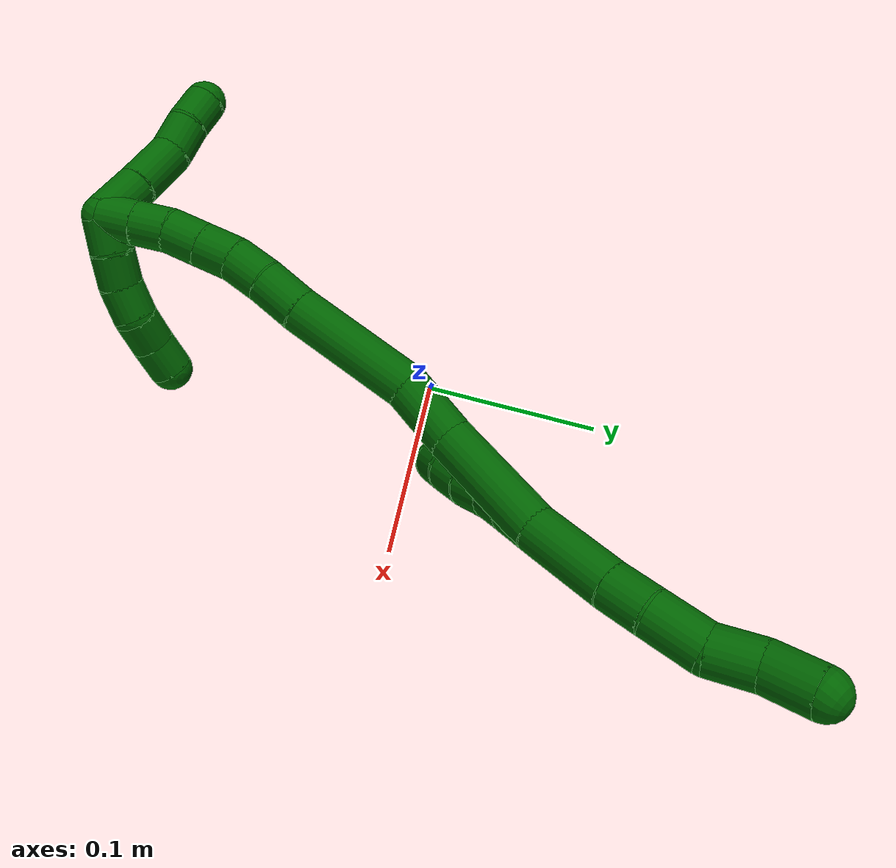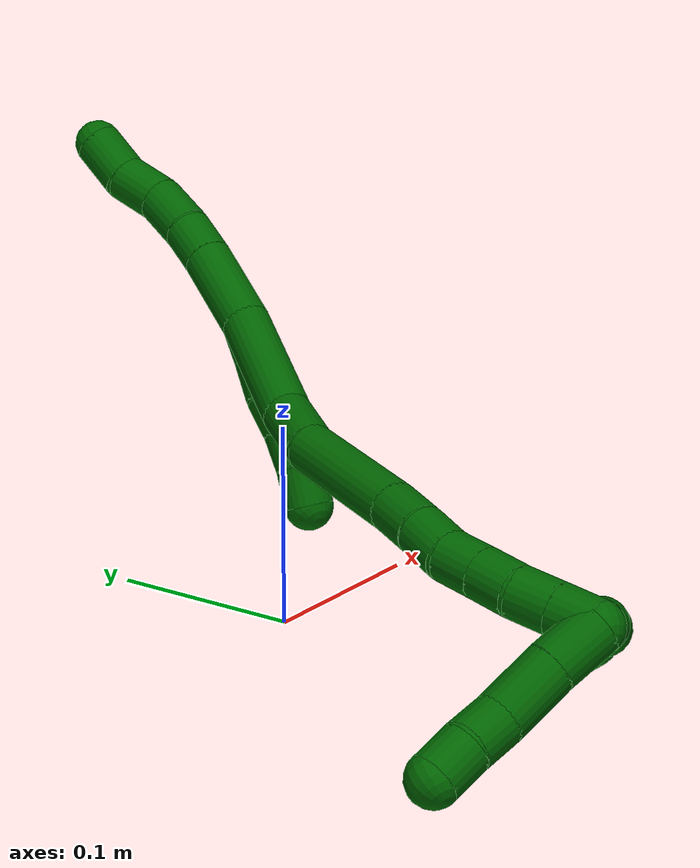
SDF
<sdf version="1.7">
 <world name="default">
  <model name="6">
   <static>0</static>
   <link name="6">
    <collision name="collision-cylinder-e_1_2_8">
     <pose>0.000823 -0.000546 0.023514 0.023215 0.034963 0.000406</pose>
     <geometry><cylinder><radius>0.0125</radius><length>0.047069</length></cylinder></geometry>
     <surface>
      <friction><ode><mu>1.16</mu><mu2>1.16</mu2><slip1>0</slip1><slip2>0</slip2></ode></friction>
      <contact><ode><kp>1e+06</kp><kd>1</kd><max_vel>0</max_vel><min_depth>0.001</min_depth></ode></contact>
     </surface>
    </collision>
    <visual name="visual-cylinder-e_1_2_8">
     <pose>0.000823 -0.000546 0.023514 0.023215 0.034963 0.000406</pose>
     <geometry><cylinder><radius>0.0125</radius><length>0.047069</length></cylinder></geometry>
     <material><ambient>0 0.392157 0.003922 1</ambient></material>
    </visual>
    <collision name="collision-cylinder-e_2_8_9">
     <pose>0.001874 -0.002045 0.058246 0.084715 0.020349 0.000862</pose>
     <geometry><cylinder><radius>0.0125</radius><length>0.022523</length></cylinder></geometry>
     <surface>
      <friction><ode><mu>1.16</mu><mu2>1.16</mu2><slip1>0</slip1><slip2>0</slip2></ode></friction>
      <contact><ode><kp>1e+06</kp><kd>1</kd><max_vel>0</max_vel><min_depth>0.001</min_depth></ode></contact>
     </surface>
    </collision>
    <visual name="visual-cylinder-e_2_8_9">
     <pose>0.001874 -0.002045 0.058246 0.084715 0.020349 0.000862</pose>
     <geometry><cylinder><radius>0.0125</radius><length>0.022523</length></cylinder></geometry>
     <material><ambient>0 0.392157 0.003922 1</ambient></material>
    </visual>
    <collision name="collision-cylinder-e_3_9_10">
     <pose>0.000348 -0.004339 0.083641 0.094351 -0.122694 -0.0058</pose>
     <geometry><cylinder><radius>0.0125</radius><length>0.028694</length></cylinder></geometry>
     <surface>
      <friction><ode><mu>1.16</mu><mu2>1.16</mu2><slip1>0</slip1><slip2>0</slip2></ode></friction>
      <contact><ode><kp>1e+06</kp><kd>1</kd><max_vel>0</max_vel><min_depth>0.001</min_depth></ode></contact>
     </surface>
    </collision>
    <visual name="visual-cylinder-e_3_9_10">
     <pose>0.000348 -0.004339 0.083641 0.094351 -0.122694 -0.0058</pose>
     <geometry><cylinder><radius>0.0125</radius><length>0.028694</length></cylinder></geometry>
     <material><ambient>0 0.392157 0.003922 1</ambient></material>
    </visual>
    <collision name="collision-cylinder-e_4_10_11">
     <pose>-0.002955 -0.010673 0.109292 0.410396 -0.122999 -0.02563</pose>
     <geometry><cylinder><radius>0.0125</radius><length>0.025218</length></cylinder></geometry>
     <surface>
      <friction><ode><mu>1.16</mu><mu2>1.16</mu2><slip1>0</slip1><slip2>0</slip2></ode></friction>
      <contact><ode><kp>1e+06</kp><kd>1</kd><max_vel>0</max_vel><min_depth>0.001</min_depth></ode></contact>
     </surface>
    </collision>
    <visual name="visual-cylinder-e_4_10_11">
     <pose>-0.002955 -0.010673 0.109292 0.410396 -0.122999 -0.02563</pose>
     <geometry><cylinder><radius>0.0125</radius><length>0.025218</length></cylinder></geometry>
     <material><ambient>0 0.392157 0.003922 1</ambient></material>
    </visual>
    <collision name="collision-cylinder-e_5_11_6">
     <pose>-0.00306 -0.01868 0.133586 0.230973 0.10911 0.01267</pose>
     <geometry><cylinder><radius>0.0125</radius><length>0.026496</length></cylinder></geometry>
     <surface>
      <friction><ode><mu>1.16</mu><mu2>1.16</mu2><slip1>0</slip1><slip2>0</slip2></ode></friction>
      <contact><ode><kp>1e+06</kp><kd>1</kd><max_vel>0</max_vel><min_depth>0.001</min_depth></ode></contact>
     </surface>
    </collision>
    <visual name="visual-cylinder-e_5_11_6">
     <pose>-0.00306 -0.01868 0.133586 0.230973 0.10911 0.01267</pose>
     <geometry><cylinder><radius>0.0125</radius><length>0.026496</length></cylinder></geometry>
     <material><ambient>0 0.392157 0.003922 1</ambient></material>
    </visual>
    <collision name="collision-cylinder-e_1_2_12">
     <pose>-0.003485 0.00017 -0.009372 -3.12346 -0.355974 3.0409</pose>
     <geometry><cylinder><radius>0.0125</radius><length>0.02</length></cylinder></geometry>
     <surface>
      <friction><ode><mu>1.16</mu><mu2>1.16</mu2><slip1>0</slip1><slip2>0</slip2></ode></friction>
      <contact><ode><kp>1e+06</kp><kd>1</kd><max_vel>0</max_vel><min_depth>0.001</min_depth></ode></contact>
     </surface>
    </collision>
    <visual name="visual-cylinder-e_1_2_12">
     <pose>-0.003485 0.00017 -0.009372 -3.12346 -0.355974 3.0409</pose>
     <geometry><cylinder><radius>0.0125</radius><length>0.02</length></cylinder></geometry>
     <material><ambient>0 0.392157 0.003922 1</ambient></material>
    </visual>
    <collision name="collision-cylinder-e_2_12_13">
     <pose>-0.011507 0.000669 -0.027648 -3.1046 -0.470946 2.98768</pose>
     <geometry><cylinder><radius>0.0125</radius><length>0.02</length></cylinder></geometry>
     <surface>
      <friction><ode><mu>1.16</mu><mu2>1.16</mu2><slip1>0</slip1><slip2>0</slip2></ode></friction>
      <contact><ode><kp>1e+06</kp><kd>1</kd><max_vel>0</max_vel><min_depth>0.001</min_depth></ode></contact>
     </surface>
    </collision>
    <visual name="visual-cylinder-e_2_12_13">
     <pose>-0.011507 0.000669 -0.027648 -3.1046 -0.470946 2.98768</pose>
     <geometry><cylinder><radius>0.0125</radius><length>0.02</length></cylinder></geometry>
     <material><ambient>0 0.392157 0.003922 1</ambient></material>
    </visual>
    <collision name="collision-cylinder-e_3_13_14">
     <pose>-0.019356 0.002539 -0.045863 -2.97761 -0.337499 2.24274</pose>
     <geometry><cylinder><radius>0.0125</radius><length>0.02</length></cylinder></geometry>
     <surface>
      <friction><ode><mu>1.16</mu><mu2>1.16</mu2><slip1>0</slip1><slip2>0</slip2></ode></friction>
      <contact><ode><kp>1e+06</kp><kd>1</kd><max_vel>0</max_vel><min_depth>0.001</min_depth></ode></contact>
     </surface>
    </collision>
    <visual name="visual-cylinder-e_3_13_14">
     <pose>-0.019356 0.002539 -0.045863 -2.97761 -0.337499 2.24274</pose>
     <geometry><cylinder><radius>0.0125</radius><length>0.02</length></cylinder></geometry>
     <material><ambient>0 0.392157 0.003922 1</ambient></material>
    </visual>
    <collision name="collision-cylinder-e_4_14_15">
     <pose>-0.026603 0.004522 -0.064355 -3.09351 -0.404494 2.90811</pose>
     <geometry><cylinder><radius>0.0125</radius><length>0.02</length></cylinder></geometry>
     <surface>
      <friction><ode><mu>1.16</mu><mu2>1.16</mu2><slip1>0</slip1><slip2>0</slip2></ode></friction>
      <contact><ode><kp>1e+06</kp><kd>1</kd><max_vel>0</max_vel><min_depth>0.001</min_depth></ode></contact>
     </surface>
    </collision>
    <visual name="visual-cylinder-e_4_14_15">
     <pose>-0.026603 0.004522 -0.064355 -3.09351 -0.404494 2.90811</pose>
     <geometry><cylinder><radius>0.0125</radius><length>0.02</length></cylinder></geometry>
     <material><ambient>0 0.392157 0.003922 1</ambient></material>
    </visual>
    <collision name="collision-cylinder-e_5_15_5">
     <pose>-0.036489 0.005182 -0.081571 -3.11445 -0.637362 3.05938</pose>
     <geometry><cylinder><radius>0.0125</radius><length>0.02</length></cylinder></geometry>
     <surface>
      <friction><ode><mu>1.16</mu><mu2>1.16</mu2><slip1>0</slip1><slip2>0</slip2></ode></friction>
      <contact><ode><kp>1e+06</kp><kd>1</kd><max_vel>0</max_vel><min_depth>0.001</min_depth></ode></contact>
     </surface>
    </collision>
    <visual name="visual-cylinder-e_5_15_5">
     <pose>-0.036489 0.005182 -0.081571 -3.11445 -0.637362 3.05938</pose>
     <geometry><cylinder><radius>0.0125</radius><length>0.02</length></cylinder></geometry>
     <material><ambient>0 0.392157 0.003922 1</ambient></material>
    </visual>
    <collision name="collision-cylinder-e_1_2_16">
     <pose>0.001431 -0.004294 -0.032988 3.01216 0.043 0.64075</pose>
     <geometry><cylinder><radius>0.0125</radius><length>0.066594</length></cylinder></geometry>
     <surface>
      <friction><ode><mu>1.16</mu><mu2>1.16</mu2><slip1>0</slip1><slip2>0</slip2></ode></friction>
      <contact><ode><kp>1e+06</kp><kd>1</kd><max_vel>0</max_vel><min_depth>0.001</min_depth></ode></contact>
     </surface>
    </collision>
    <visual name="visual-cylinder-e_1_2_16">
     <pose>0.001431 -0.004294 -0.032988 3.01216 0.043 0.64075</pose>
     <geometry><cylinder><radius>0.0125</radius><length>0.066594</length></cylinder></geometry>
     <material><ambient>0 0.392157 0.003922 1</ambient></material>
    </visual>
    <collision name="collision-cylinder-e_2_16_17">
     <pose>0.008957 -0.012033 -0.082499 2.93604 0.346502 2.0765</pose>
     <geometry><cylinder><radius>0.0125</radius><length>0.03589</length></cylinder></geometry>
     <surface>
      <friction><ode><mu>1.16</mu><mu2>1.16</mu2><slip1>0</slip1><slip2>0</slip2></ode></friction>
      <contact><ode><kp>1e+06</kp><kd>1</kd><max_vel>0</max_vel><min_depth>0.001</min_depth></ode></contact>
     </surface>
    </collision>
    <visual name="visual-cylinder-e_2_16_17">
     <pose>0.008957 -0.012033 -0.082499 2.93604 0.346502 2.0765</pose>
     <geometry><cylinder><radius>0.0125</radius><length>0.03589</length></cylinder></geometry>
     <material><ambient>0 0.392157 0.003922 1</ambient></material>
    </visual>
    <collision name="collision-cylinder-e_3_17_18">
     <pose>0.029351 -0.013788 -0.131407 -3.08948 0.415324 -2.89543</pose>
     <geometry><cylinder><radius>0.0125</radius><length>0.070882</length></cylinder></geometry>
     <surface>
      <friction><ode><mu>1.16</mu><mu2>1.16</mu2><slip1>0</slip1><slip2>0</slip2></ode></friction>
      <contact><ode><kp>1e+06</kp><kd>1</kd><max_vel>0</max_vel><min_depth>0.001</min_depth></ode></contact>
     </surface>
    </collision>
    <visual name="visual-cylinder-e_3_17_18">
     <pose>0.029351 -0.013788 -0.131407 -3.08948 0.415324 -2.89543</pose>
     <geometry><cylinder><radius>0.0125</radius><length>0.070882</length></cylinder></geometry>
     <material><ambient>0 0.392157 0.003922 1</ambient></material>
    </visual>
    <collision name="collision-cylinder-e_4_18_19">
     <pose>0.048427 -0.012419 -0.175139 3.11339 0.398192 3.00201</pose>
     <geometry><cylinder><radius>0.0125</radius><length>0.024633</length></cylinder></geometry>
     <surface>
      <friction><ode><mu>1.16</mu><mu2>1.16</mu2><slip1>0</slip1><slip2>0</slip2></ode></friction>
      <contact><ode><kp>1e+06</kp><kd>1</kd><max_vel>0</max_vel><min_depth>0.001</min_depth></ode></contact>
     </surface>
    </collision>
    <visual name="visual-cylinder-e_4_18_19">
     <pose>0.048427 -0.012419 -0.175139 3.11339 0.398192 3.00201</pose>
     <geometry><cylinder><radius>0.0125</radius><length>0.024633</length></cylinder></geometry>
     <material><ambient>0 0.392157 0.003922 1</ambient></material>
    </visual>
    <collision name="collision-cylinder-e_5_19_20">
     <pose>0.056422 -0.01232 -0.196843 -3.10116 0.301178 -2.87667</pose>
     <geometry><cylinder><radius>0.0125</radius><length>0.021705</length></cylinder></geometry>
     <surface>
      <friction><ode><mu>1.16</mu><mu2>1.16</mu2><slip1>0</slip1><slip2>0</slip2></ode></friction>
      <contact><ode><kp>1e+06</kp><kd>1</kd><max_vel>0</max_vel><min_depth>0.001</min_depth></ode></contact>
     </surface>
    </collision>
    <visual name="visual-cylinder-e_5_19_20">
     <pose>0.056422 -0.01232 -0.196843 -3.10116 0.301178 -2.87667</pose>
     <geometry><cylinder><radius>0.0125</radius><length>0.021705</length></cylinder></geometry>
     <material><ambient>0 0.392157 0.003922 1</ambient></material>
    </visual>
    <collision name="collision-cylinder-e_6_20_21">
     <pose>0.063495 -0.00945 -0.216199 -2.87563 0.391782 -1.9553</pose>
     <geometry><cylinder><radius>0.0125</radius><length>0.020185</length></cylinder></geometry>
     <surface>
      <friction><ode><mu>1.16</mu><mu2>1.16</mu2><slip1>0</slip1><slip2>0</slip2></ode></friction>
      <contact><ode><kp>1e+06</kp><kd>1</kd><max_vel>0</max_vel><min_depth>0.001</min_depth></ode></contact>
     </surface>
    </collision>
    <visual name="visual-cylinder-e_6_20_21">
     <pose>0.063495 -0.00945 -0.216199 -2.87563 0.391782 -1.9553</pose>
     <geometry><cylinder><radius>0.0125</radius><length>0.020185</length></cylinder></geometry>
     <material><ambient>0 0.392157 0.003922 1</ambient></material>
    </visual>
    <collision name="collision-cylinder-e_7_21_22">
     <pose>0.071075 -0.004606 -0.234215 -2.8823 0.379999 -1.95007</pose>
     <geometry><cylinder><radius>0.0125</radius><length>0.020088</length></cylinder></geometry>
     <surface>
      <friction><ode><mu>1.16</mu><mu2>1.16</mu2><slip1>0</slip1><slip2>0</slip2></ode></friction>
      <contact><ode><kp>1e+06</kp><kd>1</kd><max_vel>0</max_vel><min_depth>0.001</min_depth></ode></contact>
     </surface>
    </collision>
    <visual name="visual-cylinder-e_7_21_22">
     <pose>0.071075 -0.004606 -0.234215 -2.8823 0.379999 -1.95007</pose>
     <geometry><cylinder><radius>0.0125</radius><length>0.020088</length></cylinder></geometry>
     <material><ambient>0 0.392157 0.003922 1</ambient></material>
    </visual>
    <collision name="collision-cylinder-e_8_22_23">
     <pose>0.077998 0.001885 -0.25178 -2.69443 0.325316 -1.25032</pose>
     <geometry><cylinder><radius>0.0125</radius><length>0.020012</length></cylinder></geometry>
     <surface>
      <friction><ode><mu>1.16</mu><mu2>1.16</mu2><slip1>0</slip1><slip2>0</slip2></ode></friction>
      <contact><ode><kp>1e+06</kp><kd>1</kd><max_vel>0</max_vel><min_depth>0.001</min_depth></ode></contact>
     </surface>
    </collision>
    <visual name="visual-cylinder-e_8_22_23">
     <pose>0.077998 0.001885 -0.25178 -2.69443 0.325316 -1.25032</pose>
     <geometry><cylinder><radius>0.0125</radius><length>0.020012</length></cylinder></geometry>
     <material><ambient>0 0.392157 0.003922 1</ambient></material>
    </visual>
    <collision name="collision-cylinder-e_9_23_1">
     <pose>0.084322 0.010047 -0.26892 -2.69987 0.317801 -1.23977</pose>
     <geometry><cylinder><radius>0.0125</radius><length>0.02001</length></cylinder></geometry>
     <surface>
      <friction><ode><mu>1.16</mu><mu2>1.16</mu2><slip1>0</slip1><slip2>0</slip2></ode></friction>
      <contact><ode><kp>1e+06</kp><kd>1</kd><max_vel>0</max_vel><min_depth>0.001</min_depth></ode></contact>
     </surface>
    </collision>
    <visual name="visual-cylinder-e_9_23_1">
     <pose>0.084322 0.010047 -0.26892 -2.69987 0.317801 -1.23977</pose>
     <geometry><cylinder><radius>0.0125</radius><length>0.02001</length></cylinder></geometry>
     <material><ambient>0 0.392157 0.003922 1</ambient></material>
    </visual>
    <collision name="collision-cylinder-e_1_1_24">
     <pose>0.081043 0.02048 -0.273222 -0.978062 -0.695195 0.380927</pose>
     <geometry><cylinder><radius>0.0125</radius><length>0.02</length></cylinder></geometry>
     <surface>
      <friction><ode><mu>1.16</mu><mu2>1.16</mu2><slip1>0</slip1><slip2>0</slip2></ode></friction>
      <contact><ode><kp>1e+06</kp><kd>1</kd><max_vel>0</max_vel><min_depth>0.001</min_depth></ode></contact>
     </surface>
    </collision>
    <visual name="visual-cylinder-e_1_1_24">
     <pose>0.081043 0.02048 -0.273222 -0.978062 -0.695195 0.380927</pose>
     <geometry><cylinder><radius>0.0125</radius><length>0.02</length></cylinder></geometry>
     <material><ambient>0 0.392157 0.003922 1</ambient></material>
    </visual>
    <collision name="collision-cylinder-e_2_24_25">
     <pose>0.067393 0.032885 -0.265603 -1.06687 -0.810305 0.49611</pose>
     <geometry><cylinder><radius>0.0125</radius><length>0.02</length></cylinder></geometry>
     <surface>
      <friction><ode><mu>1.16</mu><mu2>1.16</mu2><slip1>0</slip1><slip2>0</slip2></ode></friction>
      <contact><ode><kp>1e+06</kp><kd>1</kd><max_vel>0</max_vel><min_depth>0.001</min_depth></ode></contact>
     </surface>
    </collision>
    <visual name="visual-cylinder-e_2_24_25">
     <pose>0.067393 0.032885 -0.265603 -1.06687 -0.810305 0.49611</pose>
     <geometry><cylinder><radius>0.0125</radius><length>0.02</length></cylinder></geometry>
     <material><ambient>0 0.392157 0.003922 1</ambient></material>
    </visual>
    <collision name="collision-cylinder-e_3_25_26">
     <pose>0.052868 0.043618 -0.257281 -0.754725 -0.81541 0.339091</pose>
     <geometry><cylinder><radius>0.0125</radius><length>0.02</length></cylinder></geometry>
     <surface>
      <friction><ode><mu>1.16</mu><mu2>1.16</mu2><slip1>0</slip1><slip2>0</slip2></ode></friction>
      <contact><ode><kp>1e+06</kp><kd>1</kd><max_vel>0</max_vel><min_depth>0.001</min_depth></ode></contact>
     </surface>
    </collision>
    <visual name="visual-cylinder-e_3_25_26">
     <pose>0.052868 0.043618 -0.257281 -0.754725 -0.81541 0.339091</pose>
     <geometry><cylinder><radius>0.0125</radius><length>0.02</length></cylinder></geometry>
     <material><ambient>0 0.392157 0.003922 1</ambient></material>
    </visual>
    <collision name="collision-cylinder-e_4_26_27">
     <pose>0.036546 0.051565 -0.249516 -0.864793 -1.12946 0.568943</pose>
     <geometry><cylinder><radius>0.0125</radius><length>0.02</length></cylinder></geometry>
     <surface>
      <friction><ode><mu>1.16</mu><mu2>1.16</mu2><slip1>0</slip1><slip2>0</slip2></ode></friction>
      <contact><ode><kp>1e+06</kp><kd>1</kd><max_vel>0</max_vel><min_depth>0.001</min_depth></ode></contact>
     </surface>
    </collision>
    <visual name="visual-cylinder-e_4_26_27">
     <pose>0.036546 0.051565 -0.249516 -0.864793 -1.12946 0.568943</pose>
     <geometry><cylinder><radius>0.0125</radius><length>0.02</length></cylinder></geometry>
     <material><ambient>0 0.392157 0.003922 1</ambient></material>
    </visual>
    <collision name="collision-cylinder-e_5_27_4">
     <pose>0.018883 0.057758 -0.24262 -0.61967 -1.03948 0.362367</pose>
     <geometry><cylinder><radius>0.0125</radius><length>0.02</length></cylinder></geometry>
     <surface>
      <friction><ode><mu>1.16</mu><mu2>1.16</mu2><slip1>0</slip1><slip2>0</slip2></ode></friction>
      <contact><ode><kp>1e+06</kp><kd>1</kd><max_vel>0</max_vel><min_depth>0.001</min_depth></ode></contact>
     </surface>
    </collision>
    <visual name="visual-cylinder-e_5_27_4">
     <pose>0.018883 0.057758 -0.24262 -0.61967 -1.03948 0.362367</pose>
     <geometry><cylinder><radius>0.0125</radius><length>0.02</length></cylinder></geometry>
     <material><ambient>0 0.392157 0.003922 1</ambient></material>
    </visual>
    <collision name="collision-cylinder-e_1_1_28">
     <pose>0.081994 0.002122 -0.281089 1.86083 -0.411169 -0.545749</pose>
     <geometry><cylinder><radius>0.0125</radius><length>0.027295</length></cylinder></geometry>
     <surface>
      <friction><ode><mu>1.16</mu><mu2>1.16</mu2><slip1>0</slip1><slip2>0</slip2></ode></friction>
      <contact><ode><kp>1e+06</kp><kd>1</kd><max_vel>0</max_vel><min_depth>0.001</min_depth></ode></contact>
     </surface>
    </collision>
    <visual name="visual-cylinder-e_1_1_28">
     <pose>0.081994 0.002122 -0.281089 1.86083 -0.411169 -0.545749</pose>
     <geometry><cylinder><radius>0.0125</radius><length>0.027295</length></cylinder></geometry>
     <material><ambient>0 0.392157 0.003922 1</ambient></material>
    </visual>
    <collision name="collision-cylinder-e_2_28_29">
     <pose>0.070036 -0.023429 -0.289859 1.9364 -0.420996 -0.602262</pose>
     <geometry><cylinder><radius>0.0125</radius><length>0.031826</length></cylinder></geometry>
     <surface>
      <friction><ode><mu>1.16</mu><mu2>1.16</mu2><slip1>0</slip1><slip2>0</slip2></ode></friction>
      <contact><ode><kp>1e+06</kp><kd>1</kd><max_vel>0</max_vel><min_depth>0.001</min_depth></ode></contact>
     </surface>
    </collision>
    <visual name="visual-cylinder-e_2_28_29">
     <pose>0.070036 -0.023429 -0.289859 1.9364 -0.420996 -0.602262</pose>
     <geometry><cylinder><radius>0.0125</radius><length>0.031826</length></cylinder></geometry>
     <material><ambient>0 0.392157 0.003922 1</ambient></material>
    </visual>
    <collision name="collision-cylinder-e_3_29_30">
     <pose>0.062184 -0.046653 -0.29869 1.93103 -0.129877 -0.187419</pose>
     <geometry><cylinder><radius>0.0125</radius><length>0.020822</length></cylinder></geometry>
     <surface>
      <friction><ode><mu>1.16</mu><mu2>1.16</mu2><slip1>0</slip1><slip2>0</slip2></ode></friction>
      <contact><ode><kp>1e+06</kp><kd>1</kd><max_vel>0</max_vel><min_depth>0.001</min_depth></ode></contact>
     </surface>
    </collision>
    <visual name="visual-cylinder-e_3_29_30">
     <pose>0.062184 -0.046653 -0.29869 1.93103 -0.129877 -0.187419</pose>
     <geometry><cylinder><radius>0.0125</radius><length>0.020822</length></cylinder></geometry>
     <material><ambient>0 0.392157 0.003922 1</ambient></material>
    </visual>
    <collision name="collision-cylinder-e_4_30_3">
     <pose>0.057953 -0.065188 -0.306004 1.96343 -0.291654 -0.432698</pose>
     <geometry><cylinder><radius>0.0125</radius><length>0.020057</length></cylinder></geometry>
     <surface>
      <friction><ode><mu>1.16</mu><mu2>1.16</mu2><slip1>0</slip1><slip2>0</slip2></ode></friction>
      <contact><ode><kp>1e+06</kp><kd>1</kd><max_vel>0</max_vel><min_depth>0.001</min_depth></ode></contact>
     </surface>
    </collision>
    <visual name="visual-cylinder-e_4_30_3">
     <pose>0.057953 -0.065188 -0.306004 1.96343 -0.291654 -0.432698</pose>
     <geometry><cylinder><radius>0.0125</radius><length>0.020057</length></cylinder></geometry>
     <material><ambient>0 0.392157 0.003922 1</ambient></material>
    </visual>
    <collision name="collision-sphere-3">
     <pose>0.055069 -0.074062 -0.309679 0 -0 0</pose>
     <geometry><sphere><radius>0.0125</radius></sphere></geometry>
     <surface>
      <friction><ode><mu>1.16</mu><mu2>1.16</mu2><slip1>0</slip1><slip2>0</slip2></ode></friction>
      <contact><ode><kp>1e+06</kp><kd>1</kd><max_vel>0</max_vel><min_depth>0.001</min_depth></ode></contact>
     </surface>
    </collision>
    <visual name="visual-sphere-3">
     <pose>0.055069 -0.074062 -0.309679 0 -0 0</pose>
     <geometry><sphere><radius>0.0125</radius></sphere></geometry>
     <material><ambient>0 0.392157 0.003922 1</ambient></material>
    </visual>
    <collision name="collision-sphere-30">
     <pose>0.060836 -0.056314 -0.302329 0 -0 0</pose>
     <geometry><sphere><radius>0.0125</radius></sphere></geometry>
     <surface>
      <friction><ode><mu>1.16</mu><mu2>1.16</mu2><slip1>0</slip1><slip2>0</slip2></ode></friction>
      <contact><ode><kp>1e+06</kp><kd>1</kd><max_vel>0</max_vel><min_depth>0.001</min_depth></ode></contact>
     </surface>
    </collision>
    <visual name="visual-sphere-30">
     <pose>0.060836 -0.056314 -0.302329 0 -0 0</pose>
     <geometry><sphere><radius>0.0125</radius></sphere></geometry>
     <material><ambient>0 0.392157 0.003922 1</ambient></material>
    </visual>
    <collision name="collision-sphere-29">
     <pose>0.063533 -0.036993 -0.295052 0 -0 0</pose>
     <geometry><sphere><radius>0.0125</radius></sphere></geometry>
     <surface>
      <friction><ode><mu>1.16</mu><mu2>1.16</mu2><slip1>0</slip1><slip2>0</slip2></ode></friction>
      <contact><ode><kp>1e+06</kp><kd>1</kd><max_vel>0</max_vel><min_depth>0.001</min_depth></ode></contact>
     </surface>
    </collision>
    <visual name="visual-sphere-29">
     <pose>0.063533 -0.036993 -0.295052 0 -0 0</pose>
     <geometry><sphere><radius>0.0125</radius></sphere></geometry>
     <material><ambient>0 0.392157 0.003922 1</ambient></material>
    </visual>
    <collision name="collision-sphere-28">
     <pose>0.076539 -0.009865 -0.284667 0 -0 0</pose>
     <geometry><sphere><radius>0.0125</radius></sphere></geometry>
     <surface>
      <friction><ode><mu>1.16</mu><mu2>1.16</mu2><slip1>0</slip1><slip2>0</slip2></ode></friction>
      <contact><ode><kp>1e+06</kp><kd>1</kd><max_vel>0</max_vel><min_depth>0.001</min_depth></ode></contact>
     </surface>
    </collision>
    <visual name="visual-sphere-28">
     <pose>0.076539 -0.009865 -0.284667 0 -0 0</pose>
     <geometry><sphere><radius>0.0125</radius></sphere></geometry>
     <material><ambient>0 0.392157 0.003922 1</ambient></material>
    </visual>
    <collision name="collision-sphere-4">
     <pose>0.010262 0.0607 -0.238495 0 -0 0</pose>
     <geometry><sphere><radius>0.0125</radius></sphere></geometry>
     <surface>
      <friction><ode><mu>1.16</mu><mu2>1.16</mu2><slip1>0</slip1><slip2>0</slip2></ode></friction>
      <contact><ode><kp>1e+06</kp><kd>1</kd><max_vel>0</max_vel><min_depth>0.001</min_depth></ode></contact>
     </surface>
    </collision>
    <visual name="visual-sphere-4">
     <pose>0.010262 0.0607 -0.238495 0 -0 0</pose>
     <geometry><sphere><radius>0.0125</radius></sphere></geometry>
     <material><ambient>0 0.392157 0.003922 1</ambient></material>
    </visual>
    <collision name="collision-sphere-27">
     <pose>0.027504 0.054815 -0.246744 0 -0 0</pose>
     <geometry><sphere><radius>0.0125</radius></sphere></geometry>
     <surface>
      <friction><ode><mu>1.16</mu><mu2>1.16</mu2><slip1>0</slip1><slip2>0</slip2></ode></friction>
      <contact><ode><kp>1e+06</kp><kd>1</kd><max_vel>0</max_vel><min_depth>0.001</min_depth></ode></contact>
     </surface>
    </collision>
    <visual name="visual-sphere-27">
     <pose>0.027504 0.054815 -0.246744 0 -0 0</pose>
     <geometry><sphere><radius>0.0125</radius></sphere></geometry>
     <material><ambient>0 0.392157 0.003922 1</ambient></material>
    </visual>
    <collision name="collision-sphere-26">
     <pose>0.045588 0.048314 -0.252287 0 -0 0</pose>
     <geometry><sphere><radius>0.0125</radius></sphere></geometry>
     <surface>
      <friction><ode><mu>1.16</mu><mu2>1.16</mu2><slip1>0</slip1><slip2>0</slip2></ode></friction>
      <contact><ode><kp>1e+06</kp><kd>1</kd><max_vel>0</max_vel><min_depth>0.001</min_depth></ode></contact>
     </surface>
    </collision>
    <visual name="visual-sphere-26">
     <pose>0.045588 0.048314 -0.252287 0 -0 0</pose>
     <geometry><sphere><radius>0.0125</radius></sphere></geometry>
     <material><ambient>0 0.392157 0.003922 1</ambient></material>
    </visual>
    <collision name="collision-sphere-25">
     <pose>0.060148 0.038921 -0.262275 0 -0 0</pose>
     <geometry><sphere><radius>0.0125</radius></sphere></geometry>
     <surface>
      <friction><ode><mu>1.16</mu><mu2>1.16</mu2><slip1>0</slip1><slip2>0</slip2></ode></friction>
      <contact><ode><kp>1e+06</kp><kd>1</kd><max_vel>0</max_vel><min_depth>0.001</min_depth></ode></contact>
     </surface>
    </collision>
    <visual name="visual-sphere-25">
     <pose>0.060148 0.038921 -0.262275 0 -0 0</pose>
     <geometry><sphere><radius>0.0125</radius></sphere></geometry>
     <material><ambient>0 0.392157 0.003922 1</ambient></material>
    </visual>
    <collision name="collision-sphere-24">
     <pose>0.074638 0.026849 -0.268932 0 -0 0</pose>
     <geometry><sphere><radius>0.0125</radius></sphere></geometry>
     <surface>
      <friction><ode><mu>1.16</mu><mu2>1.16</mu2><slip1>0</slip1><slip2>0</slip2></ode></friction>
      <contact><ode><kp>1e+06</kp><kd>1</kd><max_vel>0</max_vel><min_depth>0.001</min_depth></ode></contact>
     </surface>
    </collision>
    <visual name="visual-sphere-24">
     <pose>0.074638 0.026849 -0.268932 0 -0 0</pose>
     <geometry><sphere><radius>0.0125</radius></sphere></geometry>
     <material><ambient>0 0.392157 0.003922 1</ambient></material>
    </visual>
    <collision name="collision-sphere-1">
     <pose>0.087449 0.01411 -0.277512 0 -0 0</pose>
     <geometry><sphere><radius>0.0125</radius></sphere></geometry>
     <surface>
      <friction><ode><mu>1.16</mu><mu2>1.16</mu2><slip1>0</slip1><slip2>0</slip2></ode></friction>
      <contact><ode><kp>1e+06</kp><kd>1</kd><max_vel>0</max_vel><min_depth>0.001</min_depth></ode></contact>
     </surface>
    </collision>
    <visual name="visual-sphere-1">
     <pose>0.087449 0.01411 -0.277512 0 -0 0</pose>
     <geometry><sphere><radius>0.0125</radius></sphere></geometry>
     <material><ambient>0 0.392157 0.003922 1</ambient></material>
    </visual>
    <collision name="collision-sphere-23">
     <pose>0.081196 0.005985 -0.260328 0 -0 0</pose>
     <geometry><sphere><radius>0.0125</radius></sphere></geometry>
     <surface>
      <friction><ode><mu>1.16</mu><mu2>1.16</mu2><slip1>0</slip1><slip2>0</slip2></ode></friction>
      <contact><ode><kp>1e+06</kp><kd>1</kd><max_vel>0</max_vel><min_depth>0.001</min_depth></ode></contact>
     </surface>
    </collision>
    <visual name="visual-sphere-23">
     <pose>0.081196 0.005985 -0.260328 0 -0 0</pose>
     <geometry><sphere><radius>0.0125</radius></sphere></geometry>
     <material><ambient>0 0.392157 0.003922 1</ambient></material>
    </visual>
    <collision name="collision-sphere-22">
     <pose>0.0748 -0.002215 -0.243231 0 -0 0</pose>
     <geometry><sphere><radius>0.0125</radius></sphere></geometry>
     <surface>
      <friction><ode><mu>1.16</mu><mu2>1.16</mu2><slip1>0</slip1><slip2>0</slip2></ode></friction>
      <contact><ode><kp>1e+06</kp><kd>1</kd><max_vel>0</max_vel><min_depth>0.001</min_depth></ode></contact>
     </surface>
    </collision>
    <visual name="visual-sphere-22">
     <pose>0.0748 -0.002215 -0.243231 0 -0 0</pose>
     <geometry><sphere><radius>0.0125</radius></sphere></geometry>
     <material><ambient>0 0.392157 0.003922 1</ambient></material>
    </visual>
    <collision name="collision-sphere-21">
     <pose>0.067349 -0.006998 -0.225199 0 -0 0</pose>
     <geometry><sphere><radius>0.0125</radius></sphere></geometry>
     <surface>
      <friction><ode><mu>1.16</mu><mu2>1.16</mu2><slip1>0</slip1><slip2>0</slip2></ode></friction>
      <contact><ode><kp>1e+06</kp><kd>1</kd><max_vel>0</max_vel><min_depth>0.001</min_depth></ode></contact>
     </surface>
    </collision>
    <visual name="visual-sphere-21">
     <pose>0.067349 -0.006998 -0.225199 0 -0 0</pose>
     <geometry><sphere><radius>0.0125</radius></sphere></geometry>
     <material><ambient>0 0.392157 0.003922 1</ambient></material>
    </visual>
    <collision name="collision-sphere-6">
     <pose>-0.001617 -0.021695 0.146405 0 -0 0</pose>
     <geometry><sphere><radius>0.0125</radius></sphere></geometry>
     <surface>
      <friction><ode><mu>1.16</mu><mu2>1.16</mu2><slip1>0</slip1><slip2>0</slip2></ode></friction>
      <contact><ode><kp>1e+06</kp><kd>1</kd><max_vel>0</max_vel><min_depth>0.001</min_depth></ode></contact>
     </surface>
    </collision>
    <visual name="visual-sphere-6">
     <pose>-0.001617 -0.021695 0.146405 0 -0 0</pose>
     <geometry><sphere><radius>0.0125</radius></sphere></geometry>
     <material><ambient>0 0.392157 0.003922 1</ambient></material>
    </visual>
    <collision name="collision-sphere-11">
     <pose>-0.004502 -0.015666 0.120766 0 -0 0</pose>
     <geometry><sphere><radius>0.0125</radius></sphere></geometry>
     <surface>
      <friction><ode><mu>1.16</mu><mu2>1.16</mu2><slip1>0</slip1><slip2>0</slip2></ode></friction>
      <contact><ode><kp>1e+06</kp><kd>1</kd><max_vel>0</max_vel><min_depth>0.001</min_depth></ode></contact>
     </surface>
    </collision>
    <visual name="visual-sphere-11">
     <pose>-0.004502 -0.015666 0.120766 0 -0 0</pose>
     <geometry><sphere><radius>0.0125</radius></sphere></geometry>
     <material><ambient>0 0.392157 0.003922 1</ambient></material>
    </visual>
    <collision name="collision-sphere-10">
     <pose>-0.001408 -0.00568 0.097817 0 -0 0</pose>
     <geometry><sphere><radius>0.0125</radius></sphere></geometry>
     <surface>
      <friction><ode><mu>1.16</mu><mu2>1.16</mu2><slip1>0</slip1><slip2>0</slip2></ode></friction>
      <contact><ode><kp>1e+06</kp><kd>1</kd><max_vel>0</max_vel><min_depth>0.001</min_depth></ode></contact>
     </surface>
    </collision>
    <visual name="visual-sphere-10">
     <pose>-0.001408 -0.00568 0.097817 0 -0 0</pose>
     <geometry><sphere><radius>0.0125</radius></sphere></geometry>
     <material><ambient>0 0.392157 0.003922 1</ambient></material>
    </visual>
    <collision name="collision-sphere-9">
     <pose>0.002104 -0.002997 0.069465 0 -0 0</pose>
     <geometry><sphere><radius>0.0125</radius></sphere></geometry>
     <surface>
      <friction><ode><mu>1.16</mu><mu2>1.16</mu2><slip1>0</slip1><slip2>0</slip2></ode></friction>
      <contact><ode><kp>1e+06</kp><kd>1</kd><max_vel>0</max_vel><min_depth>0.001</min_depth></ode></contact>
     </surface>
    </collision>
    <visual name="visual-sphere-9">
     <pose>0.002104 -0.002997 0.069465 0 -0 0</pose>
     <geometry><sphere><radius>0.0125</radius></sphere></geometry>
     <material><ambient>0 0.392157 0.003922 1</ambient></material>
    </visual>
    <collision name="collision-sphere-2">
     <geometry><sphere><radius>0.0125</radius></sphere></geometry>
     <surface>
      <friction><ode><mu>1.16</mu><mu2>1.16</mu2><slip1>0</slip1><slip2>0</slip2></ode></friction>
      <contact><ode><kp>1e+06</kp><kd>1</kd><max_vel>0</max_vel><min_depth>0.001</min_depth></ode></contact>
     </surface>
    </collision>
    <visual name="visual-sphere-2">
     <geometry><sphere><radius>0.0125</radius></sphere></geometry>
     <material><ambient>0 0.392157 0.003922 1</ambient></material>
    </visual>
    <collision name="collision-sphere-19">
     <pose>0.053203 -0.012739 -0.186488 0 -0 0</pose>
     <geometry><sphere><radius>0.0125</radius></sphere></geometry>
     <surface>
      <friction><ode><mu>1.16</mu><mu2>1.16</mu2><slip1>0</slip1><slip2>0</slip2></ode></friction>
      <contact><ode><kp>1e+06</kp><kd>1</kd><max_vel>0</max_vel><min_depth>0.001</min_depth></ode></contact>
     </surface>
    </collision>
    <visual name="visual-sphere-19">
     <pose>0.053203 -0.012739 -0.186488 0 -0 0</pose>
     <geometry><sphere><radius>0.0125</radius></sphere></geometry>
     <material><ambient>0 0.392157 0.003922 1</ambient></material>
    </visual>
    <collision name="collision-sphere-8">
     <pose>0.001645 -0.001092 0.047027 0 -0 0</pose>
     <geometry><sphere><radius>0.0125</radius></sphere></geometry>
     <surface>
      <friction><ode><mu>1.16</mu><mu2>1.16</mu2><slip1>0</slip1><slip2>0</slip2></ode></friction>
      <contact><ode><kp>1e+06</kp><kd>1</kd><max_vel>0</max_vel><min_depth>0.001</min_depth></ode></contact>
     </surface>
    </collision>
    <visual name="visual-sphere-8">
     <pose>0.001645 -0.001092 0.047027 0 -0 0</pose>
     <geometry><sphere><radius>0.0125</radius></sphere></geometry>
     <material><ambient>0 0.392157 0.003922 1</ambient></material>
    </visual>
    <collision name="collision-sphere-12">
     <pose>-0.00697 0.00034 -0.018743 0 -0 0</pose>
     <geometry><sphere><radius>0.0125</radius></sphere></geometry>
     <surface>
      <friction><ode><mu>1.16</mu><mu2>1.16</mu2><slip1>0</slip1><slip2>0</slip2></ode></friction>
      <contact><ode><kp>1e+06</kp><kd>1</kd><max_vel>0</max_vel><min_depth>0.001</min_depth></ode></contact>
     </surface>
    </collision>
    <visual name="visual-sphere-12">
     <pose>-0.00697 0.00034 -0.018743 0 -0 0</pose>
     <geometry><sphere><radius>0.0125</radius></sphere></geometry>
     <material><ambient>0 0.392157 0.003922 1</ambient></material>
    </visual>
    <collision name="collision-sphere-13">
     <pose>-0.016045 0.000999 -0.036554 0 -0 0</pose>
     <geometry><sphere><radius>0.0125</radius></sphere></geometry>
     <surface>
      <friction><ode><mu>1.16</mu><mu2>1.16</mu2><slip1>0</slip1><slip2>0</slip2></ode></friction>
      <contact><ode><kp>1e+06</kp><kd>1</kd><max_vel>0</max_vel><min_depth>0.001</min_depth></ode></contact>
     </surface>
    </collision>
    <visual name="visual-sphere-13">
     <pose>-0.016045 0.000999 -0.036554 0 -0 0</pose>
     <geometry><sphere><radius>0.0125</radius></sphere></geometry>
     <material><ambient>0 0.392157 0.003922 1</ambient></material>
    </visual>
    <collision name="collision-sphere-14">
     <pose>-0.022667 0.00408 -0.055172 0 -0 0</pose>
     <geometry><sphere><radius>0.0125</radius></sphere></geometry>
     <surface>
      <friction><ode><mu>1.16</mu><mu2>1.16</mu2><slip1>0</slip1><slip2>0</slip2></ode></friction>
      <contact><ode><kp>1e+06</kp><kd>1</kd><max_vel>0</max_vel><min_depth>0.001</min_depth></ode></contact>
     </surface>
    </collision>
    <visual name="visual-sphere-14">
     <pose>-0.022667 0.00408 -0.055172 0 -0 0</pose>
     <geometry><sphere><radius>0.0125</radius></sphere></geometry>
     <material><ambient>0 0.392157 0.003922 1</ambient></material>
    </visual>
    <collision name="collision-sphere-15">
     <pose>-0.030538 0.004964 -0.073537 0 -0 0</pose>
     <geometry><sphere><radius>0.0125</radius></sphere></geometry>
     <surface>
      <friction><ode><mu>1.16</mu><mu2>1.16</mu2><slip1>0</slip1><slip2>0</slip2></ode></friction>
      <contact><ode><kp>1e+06</kp><kd>1</kd><max_vel>0</max_vel><min_depth>0.001</min_depth></ode></contact>
     </surface>
    </collision>
    <visual name="visual-sphere-15">
     <pose>-0.030538 0.004964 -0.073537 0 -0 0</pose>
     <geometry><sphere><radius>0.0125</radius></sphere></geometry>
     <material><ambient>0 0.392157 0.003922 1</ambient></material>
    </visual>
    <collision name="collision-sphere-5">
     <pose>-0.04244 0.0054 -0.089604 0 -0 0</pose>
     <geometry><sphere><radius>0.0125</radius></sphere></geometry>
     <surface>
      <friction><ode><mu>1.16</mu><mu2>1.16</mu2><slip1>0</slip1><slip2>0</slip2></ode></friction>
      <contact><ode><kp>1e+06</kp><kd>1</kd><max_vel>0</max_vel><min_depth>0.001</min_depth></ode></contact>
     </surface>
    </collision>
    <visual name="visual-sphere-5">
     <pose>-0.04244 0.0054 -0.089604 0 -0 0</pose>
     <geometry><sphere><radius>0.0125</radius></sphere></geometry>
     <material><ambient>0 0.392157 0.003922 1</ambient></material>
    </visual>
    <collision name="collision-sphere-16">
     <pose>0.002863 -0.008588 -0.065976 0 -0 0</pose>
     <geometry><sphere><radius>0.0125</radius></sphere></geometry>
     <surface>
      <friction><ode><mu>1.16</mu><mu2>1.16</mu2><slip1>0</slip1><slip2>0</slip2></ode></friction>
      <contact><ode><kp>1e+06</kp><kd>1</kd><max_vel>0</max_vel><min_depth>0.001</min_depth></ode></contact>
     </surface>
    </collision>
    <visual name="visual-sphere-16">
     <pose>0.002863 -0.008588 -0.065976 0 -0 0</pose>
     <geometry><sphere><radius>0.0125</radius></sphere></geometry>
     <material><ambient>0 0.392157 0.003922 1</ambient></material>
    </visual>
    <collision name="collision-sphere-17">
     <pose>0.015051 -0.015478 -0.099023 0 -0 0</pose>
     <geometry><sphere><radius>0.0125</radius></sphere></geometry>
     <surface>
      <friction><ode><mu>1.16</mu><mu2>1.16</mu2><slip1>0</slip1><slip2>0</slip2></ode></friction>
      <contact><ode><kp>1e+06</kp><kd>1</kd><max_vel>0</max_vel><min_depth>0.001</min_depth></ode></contact>
     </surface>
    </collision>
    <visual name="visual-sphere-17">
     <pose>0.015051 -0.015478 -0.099023 0 -0 0</pose>
     <geometry><sphere><radius>0.0125</radius></sphere></geometry>
     <material><ambient>0 0.392157 0.003922 1</ambient></material>
    </visual>
    <collision name="collision-sphere-18">
     <pose>0.043651 -0.012099 -0.163791 0 -0 0</pose>
     <geometry><sphere><radius>0.0125</radius></sphere></geometry>
     <surface>
      <friction><ode><mu>1.16</mu><mu2>1.16</mu2><slip1>0</slip1><slip2>0</slip2></ode></friction>
      <contact><ode><kp>1e+06</kp><kd>1</kd><max_vel>0</max_vel><min_depth>0.001</min_depth></ode></contact>
     </surface>
    </collision>
    <visual name="visual-sphere-18">
     <pose>0.043651 -0.012099 -0.163791 0 -0 0</pose>
     <geometry><sphere><radius>0.0125</radius></sphere></geometry>
     <material><ambient>0 0.392157 0.003922 1</ambient></material>
    </visual>
    <collision name="collision-sphere-20">
     <pose>0.059642 -0.011902 -0.207199 0 -0 0</pose>
     <geometry><sphere><radius>0.0125</radius></sphere></geometry>
     <surface>
      <friction><ode><mu>1.16</mu><mu2>1.16</mu2><slip1>0</slip1><slip2>0</slip2></ode></friction>
      <contact><ode><kp>1e+06</kp><kd>1</kd><max_vel>0</max_vel><min_depth>0.001</min_depth></ode></contact>
     </surface>
    </collision>
    <visual name="visual-sphere-20">
     <pose>0.059642 -0.011902 -0.207199 0 -0 0</pose>
     <geometry><sphere><radius>0.0125</radius></sphere></geometry>
     <material><ambient>0 0.392157 0.003922 1</ambient></material>
    </visual>
    <inertial>
     <pose>0.02789 -0.00247 -0.121371 0 -0 0</pose>
     <mass>0.75</mass>
     <inertia><ixx>1.5e-05</ixx><ixy>0</ixy><ixz>0</ixz><iyy>5.3e-05</iyy><iyz>0</iyz><izz>-1.6e-05</izz></inertia>
    </inertial>
   </link>
   <pose>0.056481 0.064751 0.13021 0.006778 -1.01463 -2.00205</pose>
  </model>
 </world>
</sdf>
